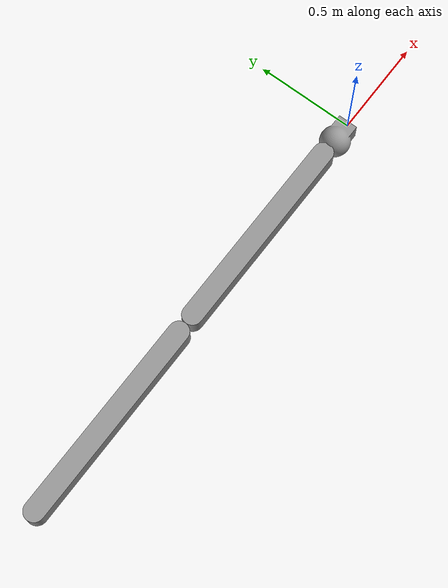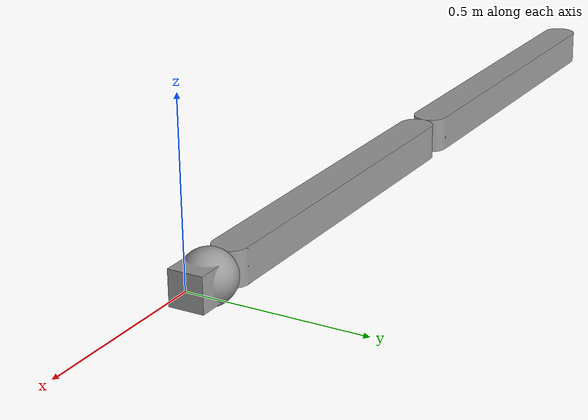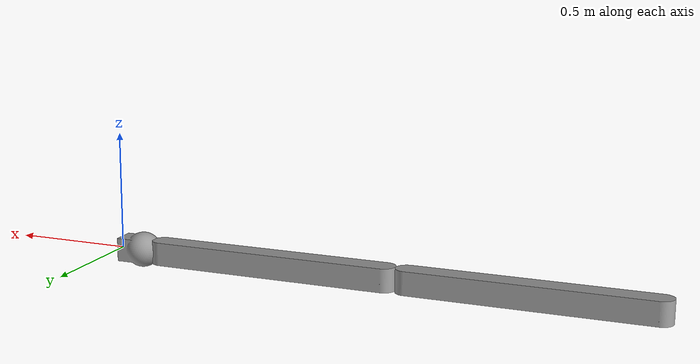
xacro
<?xml version="1.0"?>
<robot name="exo_left" xmlns:xacro="http://www.ros.org/wiki/xacro">

  <xacro:include filename="$(find exoskeleton_description)/urdf/materials.xacro" />
  <xacro:include filename="$(find exoskeleton_description)/urdf/exo_left.xacro"/>

  <xacro:arg name="hardware_interface" default="EffortJointInterface"/>
  <xacro:arg name="robot_name" default="exo"/>
  <xacro:arg name="origin_xyz" default="0 0 0"/>
  <xacro:arg name="origin_rpy" default="0 0 0"/>

  <!-- Fix to world -->
  <link name="world"/>

  <xacro:exo_left hardware_interface="$(arg hardware_interface)" robot_name="$(arg robot_name)" parent="world">
    <origin xyz="$(arg origin_xyz)" rpy="$(arg origin_rpy)" />
  </xacro:exo_left>

</robot>

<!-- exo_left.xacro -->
<robot xmlns:xacro="http://www.ros.org/wiki/xacro">

  <xacro:include filename="$(find exoskeleton_description)/urdf/exo.gazebo.xacro" />
  <xacro:include filename="$(find exoskeleton_description)/urdf/exo.transmission.xacro" />
  <xacro:include filename="$(find exoskeleton_description)/urdf/utilities.xacro" />

  <xacro:property name="safety_controller_k_pos" value="100" />
  <xacro:property name="safety_controller_k_vel" value="100" />
  <xacro:property name="joint_damping" value="0.4" />
  <xacro:property name="joint_static_friction" value="0.4" />
  <xacro:property name="max_effort" value="300"/>
  <xacro:property name="max_velocity" value="10"/>

  <xacro:macro name="exo_left" params="parent hardware_interface robot_name *origin">

    <!-- Connection joint -->
    <joint name="${parent}_${robot_name}_joint" type="fixed">
      <xacro:insert_block name="origin"/>
      <parent link="${parent}"/>
      <child link="${robot_name}_link_0"/>
    </joint>

    <link name="${robot_name}_link_0">
      <inertial>
        <origin xyz="0 0 0" rpy="0 0 0" />
        <mass value="1" />
        <inertia
          ixx="1.0"
          ixy="0.0"
          ixz="0.0"
          iyy="1.0"
          iyz="0.0"
          izz="1.0" />
        </inertial>
      <visual>
        <origin xyz="-0.1 -0.05 -0.05" rpy="0 0 0" />
        <geometry>
          <mesh
            filename="package://exoskeleton_description/meshes/base_short.stl"
            scale="0.01 0.01 0.01" />
        </geometry>
<material name="Grey"/>
      </visual>

    </link>

    <joint name="${robot_name}_joint_1" type="revolute">
      <origin
        xyz="-0.1 0 0"
        rpy="0 3.1415 0" />
      <parent
        link="${robot_name}_link_0" />
      <child
        link="${robot_name}_link_1" />
      <axis xyz="0 0 1" />
      <limit lower="${-170 * PI / 180}" upper="${170 * PI / 180}"
             effort="${max_effort}" velocity="${max_velocity}" />
      <dynamics damping="${joint_damping}" friction="${joint_static_friction}"/>
    </joint>

    <link name="${robot_name}_link_1">
      <inertial>
        <origin xyz="0.5 0 0" rpy="0 0 0" />
        <mass value="1" />
        <inertia
          ixx="1.0"
          ixy="0.0"
          ixz="0.0"
          iyy="0.0"
          iyz="0.0"
          izz="1.0" />
        </inertial>
      <visual>
        <origin xyz="0.1 -0.05 -0.05" rpy="0 0 0" />
        <geometry>
          <mesh
            filename="package://exoskeleton_description/meshes/link.stl"
            scale="0.01 0.01 0.01" />
        </geometry>
<material name="Grey"/>
      </visual>
    </link>

    <joint name="${robot_name}_joint_2" type="revolute">
      <origin
        xyz="1.15 0 -0.05"
        rpy="0 0 0" />
      <parent
        link="${robot_name}_link_1" />
      <child
        link="${robot_name}_link_2" />
      <axis xyz="0 0 1" />
      <limit lower="${-170 * PI / 180}" upper="${170 * PI / 180}"
             effort="${max_effort}" velocity="${max_velocity}" />
      <dynamics damping="${joint_damping}" friction="${joint_static_friction}"/>
    </joint>

    <link name="${robot_name}_link_2">
      <inertial>
        <origin xyz="0.5 0 0" rpy="0 0 0" />
        <mass value="1" />
        <inertia
          ixx="1.0"
          ixy="0.0"
          ixz="0.0"
          iyy="0.0"
          iyz="0.0"
          izz="1.0" />
        </inertial>
      <visual>
        <origin xyz="0.05 -0.05 0" rpy="0 0 0" />
        <geometry>
          <mesh
            filename="package://exoskeleton_description/meshes/link.stl"
            scale="0.01 0.01 0.01" />
        </geometry>
<material name="Grey"/>
      </visual>
    </link>

    <!--Extensions -->
    <xacro:exo_gazebo robot_name="${robot_name}" />
    <xacro:exo_transmission hardware_interface="${hardware_interface}" robot_name="$(arg robot_name)"/>

  </xacro:macro>

</robot>
